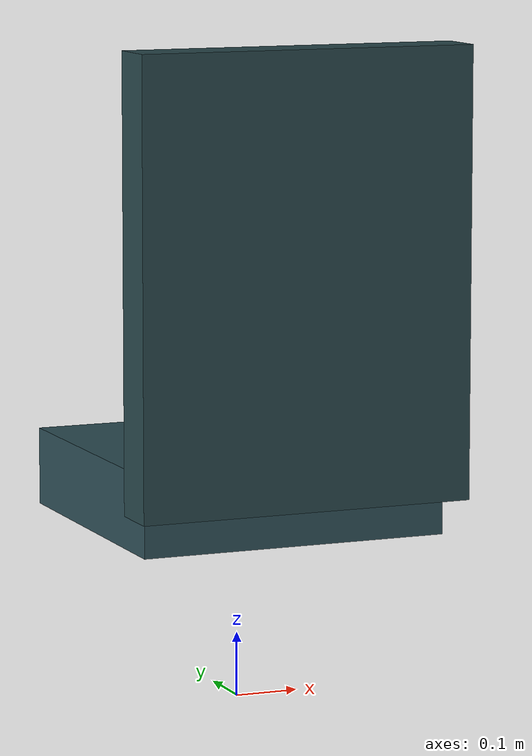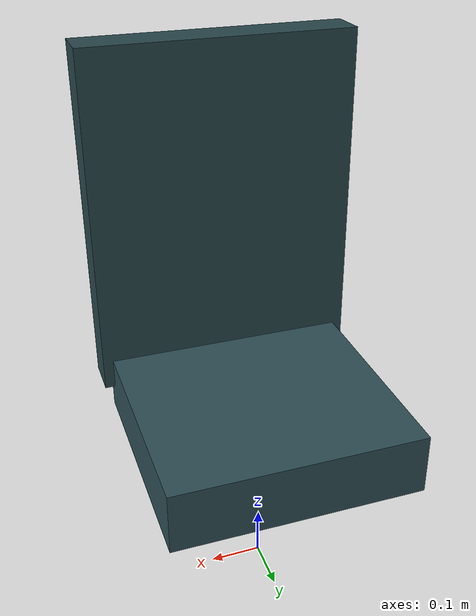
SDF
<?xml version="1.0"?>
<sdf version="1.6">
  <model name="restaurant_chair">
    <static>true</static>
    <link name="seat">
      <pose>0 0 0.34 0 0 0</pose>
      <collision name="collision">
        <geometry>
          <box>
            <size>0.48 0.46 0.12</size>
          </box>
        </geometry>
      </collision>
      <visual name="visual">
        <geometry>
          <box>
            <size>0.48 0.46 0.12</size>
          </box>
        </geometry>
        <material>
          <ambient>0.18 0.31 0.34 1</ambient>
          <diffuse>0.18 0.31 0.34 1</diffuse>
        </material>
      </visual>
    </link>
    <link name="back">
      <pose>0 -0.24 0.68 0 0 0</pose>
      <collision name="collision">
        <geometry>
          <box>
            <size>0.52 0.08 0.68</size>
          </box>
        </geometry>
      </collision>
      <visual name="visual">
        <geometry>
          <box>
            <size>0.52 0.08 0.68</size>
          </box>
        </geometry>
        <material>
          <ambient>0.16 0.28 0.30 1</ambient>
          <diffuse>0.16 0.28 0.30 1</diffuse>
        </material>
      </visual>
    </link>
  </model>
</sdf>
